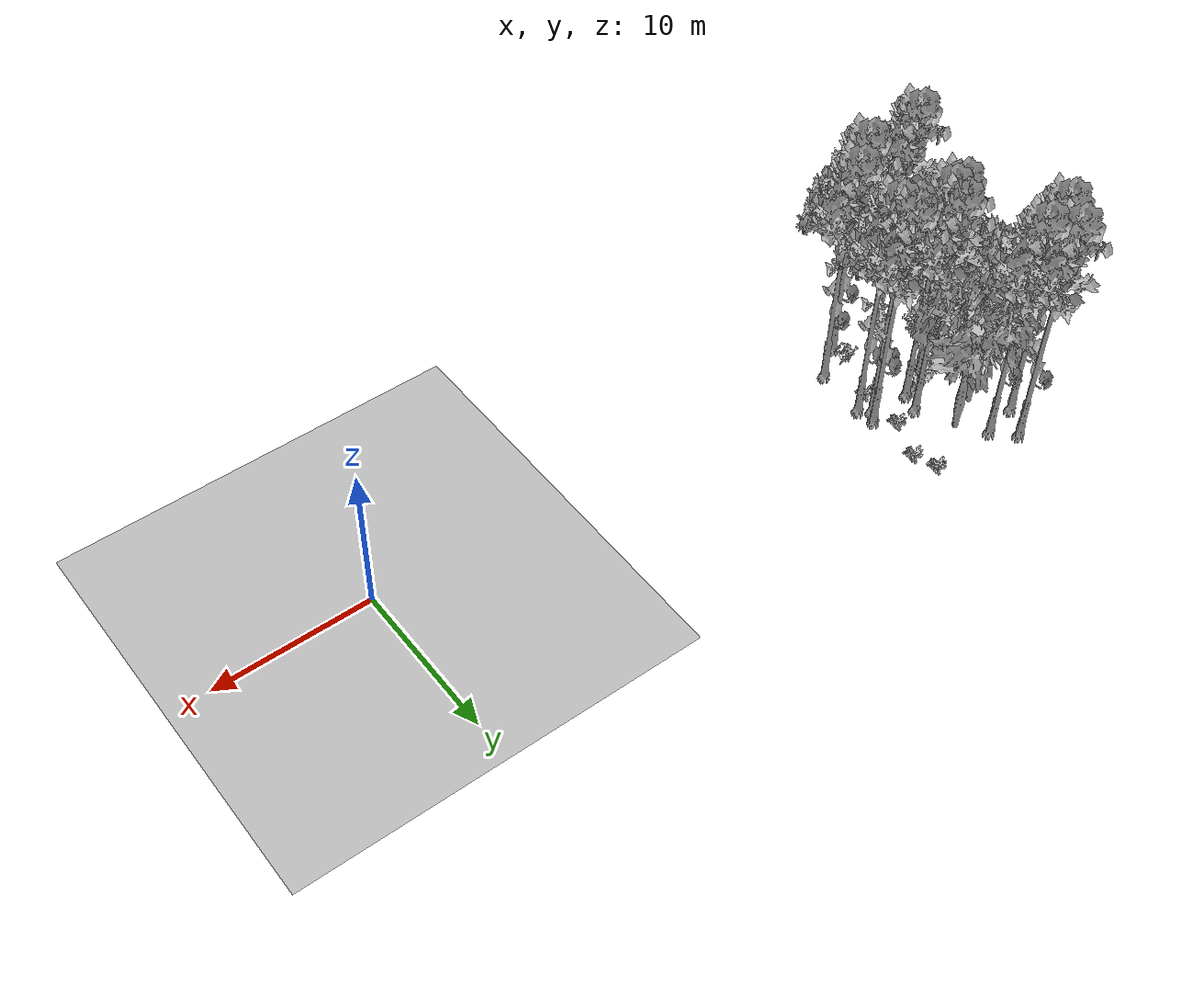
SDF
<sdf version="1.7">
 <world name="default">
  <model name="ground_plane">
   <static>1</static>
   <link name="link">
    <collision name="collision">
     <pose>-50 0 0 0 -0 0</pose>
     <geometry><plane><normal>0 0 1</normal><size>80 80</size></plane></geometry>
     <surface><contact><ode><min_depth>0.01</min_depth><max_vel>0</max_vel></ode></contact></surface>
    </collision>
    <visual name="grass">
     <cast_shadows>0</cast_shadows>
     <geometry>
      <mesh>
       <scale>0.46714285714285714 0.46714285714285714 0.1</scale>
       <uri>file://grass_plane/meshes/grass_plane.dae</uri>
      </mesh>
     </geometry>
    </visual>
   </link>
  </model>
  <model name="Tree 45">
   <static>1</static>
   <pose>-34.37443185334554 9.705038905894014 0 1.57079 -0 0</pose>
   <link name="link">
    <collision name="collision">
     <geometry><mesh><scale>3.5 5 3.5</scale><uri>model://tree_2/meshes/tree_2.obj</uri></mesh></geometry>
    </collision>
    <visual name="visual">
     <geometry><mesh><scale>3.5 5 3.5</scale><uri>model://tree_2/meshes/tree_2.obj</uri></mesh></geometry>
    </visual>
   </link>
  </model>
  <model name="Tree 62">
   <static>1</static>
   <pose>-32.99888553280031 0.5247705321696898 0 1.57079 -0 0</pose>
   <link name="link">
    <collision name="collision">
     <geometry><mesh><scale>3.5 5 3.5</scale><uri>model://tree_9/meshes/tree_9.obj</uri></mesh></geometry>
    </collision>
    <visual name="visual">
     <geometry><mesh><scale>3.5 5 3.5</scale><uri>model://tree_9/meshes/tree_9.obj</uri></mesh></geometry>
    </visual>
   </link>
  </model>
  <model name="Tree 217">
   <static>1</static>
   <pose>-36.99953485431626 12.352610921670426 0 1.57079 -0 0</pose>
   <link name="link">
    <collision name="collision">
     <geometry><mesh><scale>3.5 5 3.5</scale><uri>model://tree_9/meshes/tree_9.obj</uri></mesh></geometry>
    </collision>
    <visual name="visual">
     <geometry><mesh><scale>3.5 5 3.5</scale><uri>model://tree_9/meshes/tree_9.obj</uri></mesh></geometry>
    </visual>
   </link>
  </model>
  <model name="Tree 270">
   <static>1</static>
   <pose>-31.05163437518444 1.9024337755903389 0 1.57079 -0 0</pose>
   <link name="link">
    <collision name="collision">
     <geometry><mesh><scale>3.5 5 3.5</scale><uri>model://tree_9/meshes/tree_9.obj</uri></mesh></geometry>
    </collision>
    <visual name="visual">
     <geometry><mesh><scale>3.5 5 3.5</scale><uri>model://tree_9/meshes/tree_9.obj</uri></mesh></geometry>
    </visual>
   </link>
  </model>
  <model name="Tree 297">
   <static>1</static>
   <pose>-37.033475280510466 0.2709521050415731 0 1.57079 -0 0</pose>
   <link name="link">
    <collision name="collision">
     <geometry><mesh><scale>3.5 5 3.5</scale><uri>model://tree_9/meshes/tree_9.obj</uri></mesh></geometry>
    </collision>
    <visual name="visual">
     <geometry><mesh><scale>3.5 5 3.5</scale><uri>model://tree_9/meshes/tree_9.obj</uri></mesh></geometry>
    </visual>
   </link>
  </model>
  <model name="Tree 299">
   <static>1</static>
   <pose>-34.65996188765921 6.0368451782669155 0 1.57079 -0 0</pose>
   <link name="link">
    <collision name="collision">
     <geometry><mesh><scale>3.5 5 3.5</scale><uri>model://tree_9/meshes/tree_9.obj</uri></mesh></geometry>
    </collision>
    <visual name="visual">
     <geometry><mesh><scale>3.5 5 3.5</scale><uri>model://tree_9/meshes/tree_9.obj</uri></mesh></geometry>
    </visual>
   </link>
  </model>
  <model name="Tree 304">
   <static>1</static>
   <pose>-30.87270960001149 6.440167119033006 0 1.57079 -0 0</pose>
   <link name="link">
    <collision name="collision">
     <geometry><mesh><scale>3.5 5 3.5</scale><uri>model://tree_9/meshes/tree_9.obj</uri></mesh></geometry>
    </collision>
    <visual name="visual">
     <geometry><mesh><scale>3.5 5 3.5</scale><uri>model://tree_9/meshes/tree_9.obj</uri></mesh></geometry>
    </visual>
   </link>
  </model>
  <model name="Tree 363">
   <static>1</static>
   <pose>-37.214422195973434 6.809497895305576 0 1.57079 -0 0</pose>
   <link name="link">
    <collision name="collision">
     <geometry><mesh><scale>3.5 5 3.5</scale><uri>model://tree_2/meshes/tree_2.obj</uri></mesh></geometry>
    </collision>
    <visual name="visual">
     <geometry><mesh><scale>3.5 5 3.5</scale><uri>model://tree_2/meshes/tree_2.obj</uri></mesh></geometry>
    </visual>
   </link>
  </model>
  <model name="Tree 370">
   <static>1</static>
   <pose>-36.50212883681667 8.648022097268573 0 1.57079 -0 0</pose>
   <link name="link">
    <collision name="collision">
     <geometry><mesh><scale>3.5 5 3.5</scale><uri>model://tree_2/meshes/tree_2.obj</uri></mesh></geometry>
    </collision>
    <visual name="visual">
     <geometry><mesh><scale>3.5 5 3.5</scale><uri>model://tree_2/meshes/tree_2.obj</uri></mesh></geometry>
    </visual>
   </link>
  </model>
  <model name="Tree 381">
   <static>1</static>
   <pose>-33.51837830365601 7.227551466717387 0 1.57079 -0 0</pose>
   <link name="link">
    <collision name="collision">
     <geometry><mesh><scale>3.5 5 3.5</scale><uri>model://tree_9/meshes/tree_9.obj</uri></mesh></geometry>
    </collision>
    <visual name="visual">
     <geometry><mesh><scale>3.5 5 3.5</scale><uri>model://tree_9/meshes/tree_9.obj</uri></mesh></geometry>
    </visual>
   </link>
  </model>
  <model name="Tree 428">
   <static>1</static>
   <pose>-33.881391775050034 6.030901402380437 0 1.57079 -0 0</pose>
   <link name="link">
    <collision name="collision">
     <geometry><mesh><scale>3.5 5 3.5</scale><uri>model://tree_9/meshes/tree_9.obj</uri></mesh></geometry>
    </collision>
    <visual name="visual">
     <geometry><mesh><scale>3.5 5 3.5</scale><uri>model://tree_9/meshes/tree_9.obj</uri></mesh></geometry>
    </visual>
   </link>
  </model>
  <model name="Tree 488">
   <static>1</static>
   <pose>-38.05608746166258 10.61670994658946 0 1.57079 -0 0</pose>
   <link name="link">
    <collision name="collision">
     <geometry><mesh><scale>3.5 5 3.5</scale><uri>model://tree_9/meshes/tree_9.obj</uri></mesh></geometry>
    </collision>
    <visual name="visual">
     <geometry><mesh><scale>3.5 5 3.5</scale><uri>model://tree_9/meshes/tree_9.obj</uri></mesh></geometry>
    </visual>
   </link>
  </model>
  <model name="Tree 615">
   <static>1</static>
   <pose>-35.77015617498243 11.154047229513779 0 1.57079 -0 0</pose>
   <link name="link">
    <collision name="collision">
     <geometry><mesh><scale>3.5 5 3.5</scale><uri>model://tree_9/meshes/tree_9.obj</uri></mesh></geometry>
    </collision>
    <visual name="visual">
     <geometry><mesh><scale>3.5 5 3.5</scale><uri>model://tree_9/meshes/tree_9.obj</uri></mesh></geometry>
    </visual>
   </link>
  </model>
  <model name="Tree 623">
   <static>1</static>
   <pose>-31.320576640638123 5.829838437083481 0 1.57079 -0 0</pose>
   <link name="link">
    <collision name="collision">
     <geometry><mesh><scale>3.5 5 3.5</scale><uri>model://tree_9/meshes/tree_9.obj</uri></mesh></geometry>
    </collision>
    <visual name="visual">
     <geometry><mesh><scale>3.5 5 3.5</scale><uri>model://tree_9/meshes/tree_9.obj</uri></mesh></geometry>
    </visual>
   </link>
  </model>
  <model name="Tree 636">
   <static>1</static>
   <pose>-30.72865345341101 5.255335942888742 0 1.57079 -0 0</pose>
   <link name="link">
    <collision name="collision">
     <geometry><mesh><scale>3.5 5 3.5</scale><uri>model://tree_9/meshes/tree_9.obj</uri></mesh></geometry>
    </collision>
    <visual name="visual">
     <geometry><mesh><scale>3.5 5 3.5</scale><uri>model://tree_9/meshes/tree_9.obj</uri></mesh></geometry>
    </visual>
   </link>
  </model>
  <model name="Bush 12">
   <static>1</static>
   <pose>-31.29337552593407 11.334428544063542 0 1.57079 -0 0</pose>
   <link name="link">
    <collision name="collision">
     <geometry><mesh><scale>2 2 2</scale><uri>model://bush_2/meshes/bush_2.obj</uri></mesh></geometry>
     <surface><contact><collide_without_contact>false</collide_without_contact></contact></surface>
    </collision>
    <visual name="visual">
     <geometry><mesh><scale>2 2 2</scale><uri>model://bush_2/meshes/bush_2.obj</uri></mesh></geometry>
    </visual>
   </link>
  </model>
  <model name="Bush 33">
   <static>1</static>
   <pose>-32.70453810206817 1.9066200292808162 0 1.57079 -0 0</pose>
   <link name="link">
    <collision name="collision">
     <geometry><mesh><scale>2 2 2</scale><uri>model://bush_4/meshes/bush_4.obj</uri></mesh></geometry>
     <surface><contact><collide_without_contact>false</collide_without_contact></contact></surface>
    </collision>
    <visual name="visual">
     <geometry><mesh><scale>2 2 2</scale><uri>model://bush_4/meshes/bush_4.obj</uri></mesh></geometry>
    </visual>
   </link>
  </model>
  <model name="Bush 84">
   <static>1</static>
   <pose>-30.807205882577883 9.899629518708352 0 1.57079 -0 0</pose>
   <link name="link">
    <collision name="collision">
     <geometry><mesh><scale>2 2 2</scale><uri>model://bush_2/meshes/bush_2.obj</uri></mesh></geometry>
     <surface><contact><collide_without_contact>false</collide_without_contact></contact></surface>
    </collision>
    <visual name="visual">
     <geometry><mesh><scale>2 2 2</scale><uri>model://bush_2/meshes/bush_2.obj</uri></mesh></geometry>
    </visual>
   </link>
  </model>
  <model name="Bush 307">
   <static>1</static>
   <pose>-31.82832572225994 7.45987607023676 0 1.57079 -0 0</pose>
   <link name="link">
    <collision name="collision">
     <geometry><mesh><scale>2 2 2</scale><uri>model://bush_2/meshes/bush_2.obj</uri></mesh></geometry>
     <surface><contact><collide_without_contact>false</collide_without_contact></contact></surface>
    </collision>
    <visual name="visual">
     <geometry><mesh><scale>2 2 2</scale><uri>model://bush_2/meshes/bush_2.obj</uri></mesh></geometry>
    </visual>
   </link>
  </model>
  <model name="Bush 590">
   <static>1</static>
   <pose>-38.139031849088354 4.783019394646757 0 1.57079 -0 0</pose>
   <link name="link">
    <collision name="collision">
     <geometry><mesh><scale>2 2 2</scale><uri>model://bush_4/meshes/bush_4.obj</uri></mesh></geometry>
     <surface><contact><collide_without_contact>false</collide_without_contact></contact></surface>
    </collision>
    <visual name="visual">
     <geometry><mesh><scale>2 2 2</scale><uri>model://bush_4/meshes/bush_4.obj</uri></mesh></geometry>
    </visual>
   </link>
  </model>
  <model name="Bush 594">
   <static>1</static>
   <pose>-35.059723227317306 5.807338353386406 0 1.57079 -0 0</pose>
   <link name="link">
    <collision name="collision">
     <geometry><mesh><scale>2 2 2</scale><uri>model://bush_1/meshes/bush_1.obj</uri></mesh></geometry>
     <surface><contact><collide_without_contact>false</collide_without_contact></contact></surface>
    </collision>
    <visual name="visual">
     <geometry><mesh><scale>2 2 2</scale><uri>model://bush_1/meshes/bush_1.obj</uri></mesh></geometry>
    </visual>
   </link>
  </model>
  <model name="Bush 609">
   <static>1</static>
   <pose>-31.89841510095917 4.593939487859103 0 1.57079 -0 0</pose>
   <link name="link">
    <collision name="collision">
     <geometry><mesh><scale>2 2 2</scale><uri>model://bush_2/meshes/bush_2.obj</uri></mesh></geometry>
     <surface><contact><collide_without_contact>false</collide_without_contact></contact></surface>
    </collision>
    <visual name="visual">
     <geometry><mesh><scale>2 2 2</scale><uri>model://bush_2/meshes/bush_2.obj</uri></mesh></geometry>
    </visual>
   </link>
  </model>
  <model name="Bush 629">
   <static>1</static>
   <pose>-37.33347640938612 2.799756425051825 0 1.57079 -0 0</pose>
   <link name="link">
    <collision name="collision">
     <geometry><mesh><scale>2 2 2</scale><uri>model://bush_5/meshes/bush_5.obj</uri></mesh></geometry>
     <surface><contact><collide_without_contact>false</collide_without_contact></contact></surface>
    </collision>
    <visual name="visual">
     <geometry><mesh><scale>2 2 2</scale><uri>model://bush_5/meshes/bush_5.obj</uri></mesh></geometry>
    </visual>
   </link>
  </model>
 </world>
</sdf>
